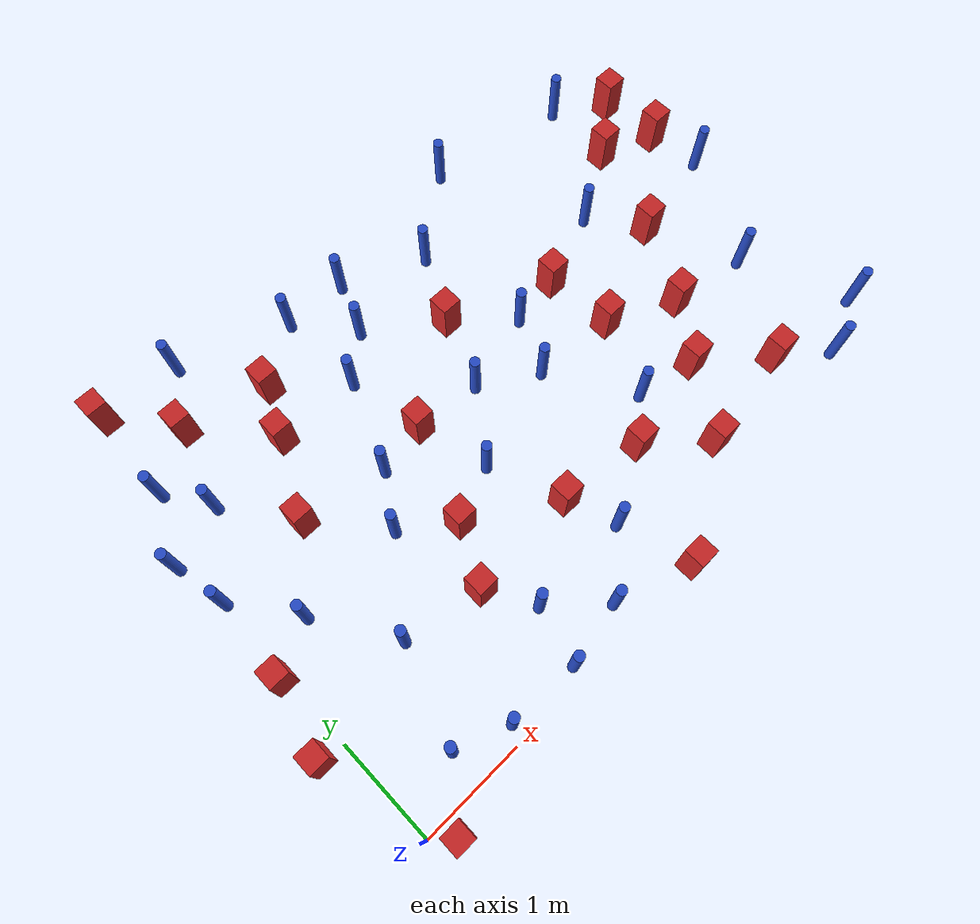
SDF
<sdf version="1.6">
 <model name="dense_9">
  <model name="square_post_obstacle2">
   <static>true</static>
   <pose>0.289632002403 4.67580909844 -6.11067671241e-07 -5.50515727128e-06 -8.79689657224e-07 2.37013304536e-05</pose>
   <link name="link">
    <pose>0 0 0.25 0 -0 0</pose>
    <inertial>
     <mass>100</mass>
     <inertia>
      <ixx>0.166667</ixx>
      <ixy>0</ixy>
      <ixz>0</ixz>
      <iyy>0.166667</iyy>
      <iyz>0</iyz>
      <izz>0.166667</izz>
     </inertia>
    </inertial>
    <collision name="collision"><geometry><box><size>.2 .2 .5</size></box></geometry></collision>
    <visual name="visual">
     <geometry><box><size>.2 .2 .5</size></box></geometry>
     <material>
      <script><name>Gazebo/Red</name><uri>file://media/materials/scripts/gazebo.material</uri></script>
     </material>
    </visual>
   </link>
  </model>
  <model name="pole_obstacle2">
   <static>true</static>
   <pose>3.53113890478 2.21635083177 -9.47619616065e-06 5.49618799737e-07 2.36310414051e-07 -1.55090534807e-07</pose>
   <link name="link">
    <pose>0 0 0.3 0 -0 0</pose>
    <inertial>
     <mass>1</mass>
     <inertia><ixx>0.145833</ixx><ixy>0</ixy><ixz>0</ixz><iyy>0.145833</iyy><iyz>0</iyz><izz>0.125</izz></inertia>
    </inertial>
    <collision name="collision">
     <geometry><cylinder><radius>0.05</radius><length>.6</length></cylinder></geometry>
    </collision>
    <visual name="visual">
     <geometry><cylinder><radius>0.05</radius><length>.6</length></cylinder></geometry>
     <material>
      <script><name>Gazebo/Blue</name><uri>file://media/materials/scripts/gazebo.material</uri></script>
     </material>
    </visual>
   </link>
  </model>
  <model name="square_post_obstacle5">
   <static>true</static>
   <pose>0.197511593898 -0.157477024642 -6.11067671241e-07 -5.50515727128e-06 -8.79689657224e-07 2.37013304536e-05</pose>
   <link name="link">
    <pose>0 0 0.25 0 -0 0</pose>
    <inertial>
     <mass>100</mass>
     <inertia>
      <ixx>0.166667</ixx>
      <ixy>0</ixy>
      <ixz>0</ixz>
      <iyy>0.166667</iyy>
      <iyz>0</iyz>
      <izz>0.166667</izz>
     </inertia>
    </inertial>
    <collision name="collision"><geometry><box><size>.2 .2 .5</size></box></geometry></collision>
    <visual name="visual">
     <geometry><box><size>.2 .2 .5</size></box></geometry>
     <material>
      <script><name>Gazebo/Red</name><uri>file://media/materials/scripts/gazebo.material</uri></script>
     </material>
    </visual>
   </link>
  </model>
  <model name="pole_obstacle8">
   <static>true</static>
   <pose>5.81048403324 4.28842071337 -9.47619616065e-06 5.49618799737e-07 2.36310414037e-07 -1.55090534814e-07</pose>
   <link name="link">
    <pose>0 0 0.3 0 -0 0</pose>
    <inertial>
     <mass>1</mass>
     <inertia><ixx>0.145833</ixx><ixy>0</ixy><ixz>0</ixz><iyy>0.145833</iyy><iyz>0</iyz><izz>0.125</izz></inertia>
    </inertial>
    <collision name="collision">
     <geometry><cylinder><radius>0.05</radius><length>.6</length></cylinder></geometry>
    </collision>
    <visual name="visual">
     <geometry><cylinder><radius>0.05</radius><length>.6</length></cylinder></geometry>
     <material>
      <script><name>Gazebo/Blue</name><uri>file://media/materials/scripts/gazebo.material</uri></script>
     </material>
    </visual>
   </link>
  </model>
  <model name="square_post_obstacle22">
   <static>true</static>
   <pose>1.5766084047 3.87303385566 -6.11067671241e-07 -5.50515727128e-06 -8.79689657224e-07 2.37013304536e-05</pose>
   <link name="link">
    <pose>0 0 0.25 0 -0 0</pose>
    <inertial>
     <mass>100</mass>
     <inertia>
      <ixx>0.166667</ixx>
      <ixy>0</ixy>
      <ixz>0</ixz>
      <iyy>0.166667</iyy>
      <iyz>0</iyz>
      <izz>0.166667</izz>
     </inertia>
    </inertial>
    <collision name="collision"><geometry><box><size>.2 .2 .5</size></box></geometry></collision>
    <visual name="visual">
     <geometry><box><size>.2 .2 .5</size></box></geometry>
     <material>
      <script><name>Gazebo/Red</name><uri>file://media/materials/scripts/gazebo.material</uri></script>
     </material>
    </visual>
   </link>
  </model>
  <model name="square_post_obstacle26">
   <static>true</static>
   <pose>1.67725255754 1.12566095785 -6.11067671241e-07 -5.50515727128e-06 -8.79689657224e-07 2.37013304536e-05</pose>
   <link name="link">
    <pose>0 0 0.25 0 -0 0</pose>
    <inertial>
     <mass>100</mass>
     <inertia>
      <ixx>0.166667</ixx>
      <ixy>0</ixy>
      <ixz>0</ixz>
      <iyy>0.166667</iyy>
      <iyz>0</iyz>
      <izz>0.166667</izz>
     </inertia>
    </inertial>
    <collision name="collision"><geometry><box><size>.2 .2 .5</size></box></geometry></collision>
    <visual name="visual">
     <geometry><box><size>.2 .2 .5</size></box></geometry>
     <material>
      <script><name>Gazebo/Red</name><uri>file://media/materials/scripts/gazebo.material</uri></script>
     </material>
    </visual>
   </link>
  </model>
  <model name="square_post_obstacle28">
   <static>true</static>
   <pose>5.21339870408 0.800874993577 -6.11067671241e-07 -5.50515727128e-06 -8.79689657224e-07 2.37013304536e-05</pose>
   <link name="link">
    <pose>0 0 0.25 0 -0 0</pose>
    <inertial>
     <mass>100</mass>
     <inertia>
      <ixx>0.166667</ixx>
      <ixy>0</ixy>
      <ixz>0</ixz>
      <iyy>0.166667</iyy>
      <iyz>0</iyz>
      <izz>0.166667</izz>
     </inertia>
    </inertial>
    <collision name="collision"><geometry><box><size>.2 .2 .5</size></box></geometry></collision>
    <visual name="visual">
     <geometry><box><size>.2 .2 .5</size></box></geometry>
     <material>
      <script><name>Gazebo/Red</name><uri>file://media/materials/scripts/gazebo.material</uri></script>
     </material>
    </visual>
   </link>
  </model>
  <model name="pole_obstacle19">
   <static>true</static>
   <pose>5.80837014451 1.71492182112 -9.47619616065e-06 5.49618799738e-07 2.36310414071e-07 -1.55090534796e-07</pose>
   <link name="link">
    <pose>0 0 0.3 0 -0 0</pose>
    <inertial>
     <mass>1</mass>
     <inertia><ixx>0.145833</ixx><ixy>0</ixy><ixz>0</ixz><iyy>0.145833</iyy><iyz>0</iyz><izz>0.125</izz></inertia>
    </inertial>
    <collision name="collision">
     <geometry><cylinder><radius>0.05</radius><length>.6</length></cylinder></geometry>
    </collision>
    <visual name="visual">
     <geometry><cylinder><radius>0.05</radius><length>.6</length></cylinder></geometry>
     <material>
      <script><name>Gazebo/Blue</name><uri>file://media/materials/scripts/gazebo.material</uri></script>
     </material>
    </visual>
   </link>
  </model>
  <model name="square_post_obstacle30">
   <static>true</static>
   <pose>2.31409844909 2.59847016423 -6.11067671241e-07 -5.50515727128e-06 -8.79689657224e-07 2.37013304536e-05</pose>
   <link name="link">
    <pose>0 0 0.25 0 -0 0</pose>
    <inertial>
     <mass>100</mass>
     <inertia>
      <ixx>0.166667</ixx>
      <ixy>0</ixy>
      <ixz>0</ixz>
      <iyy>0.166667</iyy>
      <iyz>0</iyz>
      <izz>0.166667</izz>
     </inertia>
    </inertial>
    <collision name="collision"><geometry><box><size>.2 .2 .5</size></box></geometry></collision>
    <visual name="visual">
     <geometry><box><size>.2 .2 .5</size></box></geometry>
     <material>
      <script><name>Gazebo/Red</name><uri>file://media/materials/scripts/gazebo.material</uri></script>
     </material>
    </visual>
   </link>
  </model>
  <model name="square_post_obstacle32">
   <static>true</static>
   <pose>4.34222511146 2.15220514527 -6.11067671241e-07 -5.50515727128e-06 -8.79689657224e-07 2.37013304536e-05</pose>
   <link name="link">
    <pose>0 0 0.25 0 -0 0</pose>
    <inertial>
     <mass>100</mass>
     <inertia>
      <ixx>0.166667</ixx>
      <ixy>0</ixy>
      <ixz>0</ixz>
      <iyy>0.166667</iyy>
      <iyz>0</iyz>
      <izz>0.166667</izz>
     </inertia>
    </inertial>
    <collision name="collision"><geometry><box><size>.2 .2 .5</size></box></geometry></collision>
    <visual name="visual">
     <geometry><box><size>.2 .2 .5</size></box></geometry>
     <material>
      <script><name>Gazebo/Red</name><uri>file://media/materials/scripts/gazebo.material</uri></script>
     </material>
    </visual>
   </link>
  </model>
  <model name="pole_obstacle33">
   <static>true</static>
   <pose>2.94641307945 0.705355554668 -9.47619616065e-06 5.49618799738e-07 2.36310414075e-07 -1.55090534793e-07</pose>
   <link name="link">
    <pose>0 0 0.3 0 -0 0</pose>
    <inertial>
     <mass>1</mass>
     <inertia><ixx>0.145833</ixx><ixy>0</ixy><ixz>0</ixz><iyy>0.145833</iyy><iyz>0</iyz><izz>0.125</izz></inertia>
    </inertial>
    <collision name="collision">
     <geometry><cylinder><radius>0.05</radius><length>.6</length></cylinder></geometry>
    </collision>
    <visual name="visual">
     <geometry><cylinder><radius>0.05</radius><length>.6</length></cylinder></geometry>
     <material>
      <script><name>Gazebo/Blue</name><uri>file://media/materials/scripts/gazebo.material</uri></script>
     </material>
    </visual>
   </link>
  </model>
  <model name="pole_obstacle38">
   <static>true</static>
   <pose>1.93459272871 0.675813867204 -9.47619616065e-06 5.49618799737e-07 2.36310414065e-07 -1.55090534798e-07</pose>
   <link name="link">
    <pose>0 0 0.3 0 -0 0</pose>
    <inertial>
     <mass>1</mass>
     <inertia><ixx>0.145833</ixx><ixy>0</ixy><ixz>0</ixz><iyy>0.145833</iyy><iyz>0</iyz><izz>0.125</izz></inertia>
    </inertial>
    <collision name="collision">
     <geometry><cylinder><radius>0.05</radius><length>.6</length></cylinder></geometry>
    </collision>
    <visual name="visual">
     <geometry><cylinder><radius>0.05</radius><length>.6</length></cylinder></geometry>
     <material>
      <script><name>Gazebo/Blue</name><uri>file://media/materials/scripts/gazebo.material</uri></script>
     </material>
    </visual>
   </link>
  </model>
  <model name="pole_obstacle42">
   <static>true</static>
   <pose>0.0202788030529 2.55956008532 -9.47619616065e-06 5.49618799737e-07 2.36310414066e-07 -1.55090534795e-07</pose>
   <link name="link">
    <pose>0 0 0.3 0 -0 0</pose>
    <inertial>
     <mass>1</mass>
     <inertia><ixx>0.145833</ixx><ixy>0</ixy><ixz>0</ixz><iyy>0.145833</iyy><iyz>0</iyz><izz>0.125</izz></inertia>
    </inertial>
    <collision name="collision">
     <geometry><cylinder><radius>0.05</radius><length>.6</length></cylinder></geometry>
    </collision>
    <visual name="visual">
     <geometry><cylinder><radius>0.05</radius><length>.6</length></cylinder></geometry>
     <material>
      <script><name>Gazebo/Blue</name><uri>file://media/materials/scripts/gazebo.material</uri></script>
     </material>
    </visual>
   </link>
  </model>
  <model name="square_post_obstacle42">
   <static>true</static>
   <pose>4.59890977952 1.30032857179 -6.11067671241e-07 -5.50515727128e-06 -8.79689657224e-07 2.37013304536e-05</pose>
   <link name="link">
    <pose>0 0 0.25 0 -0 0</pose>
    <inertial>
     <mass>100</mass>
     <inertia>
      <ixx>0.166667</ixx>
      <ixy>0</ixy>
      <ixz>0</ixz>
      <iyy>0.166667</iyy>
      <iyz>0</iyz>
      <izz>0.166667</izz>
     </inertia>
    </inertial>
    <collision name="collision"><geometry><box><size>.2 .2 .5</size></box></geometry></collision>
    <visual name="visual">
     <geometry><box><size>.2 .2 .5</size></box></geometry>
     <material>
      <script><name>Gazebo/Red</name><uri>file://media/materials/scripts/gazebo.material</uri></script>
     </material>
    </visual>
   </link>
  </model>
  <model name="pole_obstacle53">
   <static>true</static>
   <pose>1.4944517951 2.02455784514 -9.47619616065e-06 5.49618799737e-07 2.36310414052e-07 -1.55090534804e-07</pose>
   <link name="link">
    <pose>0 0 0.3 0 -0 0</pose>
    <inertial>
     <mass>1</mass>
     <inertia><ixx>0.145833</ixx><ixy>0</ixy><ixz>0</ixz><iyy>0.145833</iyy><iyz>0</iyz><izz>0.125</izz></inertia>
    </inertial>
    <collision name="collision">
     <geometry><cylinder><radius>0.05</radius><length>.6</length></cylinder></geometry>
    </collision>
    <visual name="visual">
     <geometry><cylinder><radius>0.05</radius><length>.6</length></cylinder></geometry>
     <material>
      <script><name>Gazebo/Blue</name><uri>file://media/materials/scripts/gazebo.material</uri></script>
     </material>
    </visual>
   </link>
  </model>
  <model name="square_post_obstacle57">
   <static>true</static>
   <pose>3.25659911849 3.23759663204 -6.11067671241e-07 -5.50515727128e-06 -8.79689657224e-07 2.37013304536e-05</pose>
   <link name="link">
    <pose>0 0 0.25 0 -0 0</pose>
    <inertial>
     <mass>100</mass>
     <inertia>
      <ixx>0.166667</ixx>
      <ixy>0</ixy>
      <ixz>0</ixz>
      <iyy>0.166667</iyy>
      <iyz>0</iyz>
      <izz>0.166667</izz>
     </inertia>
    </inertial>
    <collision name="collision"><geometry><box><size>.2 .2 .5</size></box></geometry></collision>
    <visual name="visual">
     <geometry><box><size>.2 .2 .5</size></box></geometry>
     <material>
      <script><name>Gazebo/Red</name><uri>file://media/materials/scripts/gazebo.material</uri></script>
     </material>
    </visual>
   </link>
  </model>
  <model name="pole_obstacle66">
   <static>true</static>
   <pose>1.80842460372 2.5107694685 -9.47619616065e-06 5.49618799737e-07 2.36310414062e-07 -1.55090534798e-07</pose>
   <link name="link">
    <pose>0 0 0.3 0 -0 0</pose>
    <inertial>
     <mass>1</mass>
     <inertia><ixx>0.145833</ixx><ixy>0</ixy><ixz>0</ixz><iyy>0.145833</iyy><iyz>0</iyz><izz>0.125</izz></inertia>
    </inertial>
    <collision name="collision">
     <geometry><cylinder><radius>0.05</radius><length>.6</length></cylinder></geometry>
    </collision>
    <visual name="visual">
     <geometry><cylinder><radius>0.05</radius><length>.6</length></cylinder></geometry>
     <material>
      <script><name>Gazebo/Blue</name><uri>file://media/materials/scripts/gazebo.material</uri></script>
     </material>
    </visual>
   </link>
  </model>
  <model name="pole_obstacle69">
   <static>true</static>
   <pose>5.67771473059 0.440851921993 -9.47619616065e-06 5.49618799737e-07 2.36310414057e-07 -1.55090534802e-07</pose>
   <link name="link">
    <pose>0 0 0.3 0 -0 0</pose>
    <inertial>
     <mass>1</mass>
     <inertia><ixx>0.145833</ixx><ixy>0</ixy><ixz>0</ixz><iyy>0.145833</iyy><iyz>0</iyz><izz>0.125</izz></inertia>
    </inertial>
    <collision name="collision">
     <geometry><cylinder><radius>0.05</radius><length>.6</length></cylinder></geometry>
    </collision>
    <visual name="visual">
     <geometry><cylinder><radius>0.05</radius><length>.6</length></cylinder></geometry>
     <material>
      <script><name>Gazebo/Blue</name><uri>file://media/materials/scripts/gazebo.material</uri></script>
     </material>
    </visual>
   </link>
  </model>
  <model name="pole_obstacle73">
   <static>true</static>
   <pose>3.59469836904 3.90290021158 -9.47619616065e-06 5.49618799737e-07 2.36310414051e-07 -1.55090534807e-07</pose>
   <link name="link">
    <pose>0 0 0.3 0 -0 0</pose>
    <inertial>
     <mass>1</mass>
     <inertia><ixx>0.145833</ixx><ixy>0</ixy><ixz>0</ixz><iyy>0.145833</iyy><iyz>0</iyz><izz>0.125</izz></inertia>
    </inertial>
    <collision name="collision">
     <geometry><cylinder><radius>0.05</radius><length>.6</length></cylinder></geometry>
    </collision>
    <visual name="visual">
     <geometry><cylinder><radius>0.05</radius><length>.6</length></cylinder></geometry>
     <material>
      <script><name>Gazebo/Blue</name><uri>file://media/materials/scripts/gazebo.material</uri></script>
     </material>
    </visual>
   </link>
  </model>
  <model name="pole_obstacle74">
   <static>true</static>
   <pose>-0.0822452410296 3.08621470215 -9.47619616065e-06 5.49618799737e-07 2.36310414067e-07 -1.55090534797e-07</pose>
   <link name="link">
    <pose>0 0 0.3 0 -0 0</pose>
    <inertial>
     <mass>1</mass>
     <inertia><ixx>0.145833</ixx><ixy>0</ixy><ixz>0</ixz><iyy>0.145833</iyy><iyz>0</iyz><izz>0.125</izz></inertia>
    </inertial>
    <collision name="collision">
     <geometry><cylinder><radius>0.05</radius><length>.6</length></cylinder></geometry>
    </collision>
    <visual name="visual">
     <geometry><cylinder><radius>0.05</radius><length>.6</length></cylinder></geometry>
     <material>
      <script><name>Gazebo/Blue</name><uri>file://media/materials/scripts/gazebo.material</uri></script>
     </material>
    </visual>
   </link>
  </model>
  <model name="square_post_obstacle78">
   <static>true</static>
   <pose>4.1668135629 0.625565197173 -6.11067671241e-07 -5.50515727128e-06 -8.79689657224e-07 2.37013304536e-05</pose>
   <link name="link">
    <pose>0 0 0.25 0 -0 0</pose>
    <inertial>
     <mass>100</mass>
     <inertia>
      <ixx>0.166667</ixx>
      <ixy>0</ixy>
      <ixz>0</ixz>
      <iyy>0.166667</iyy>
      <iyz>0</iyz>
      <izz>0.166667</izz>
     </inertia>
    </inertial>
    <collision name="collision"><geometry><box><size>.2 .2 .5</size></box></geometry></collision>
    <visual name="visual">
     <geometry><box><size>.2 .2 .5</size></box></geometry>
     <material>
      <script><name>Gazebo/Red</name><uri>file://media/materials/scripts/gazebo.material</uri></script>
     </material>
    </visual>
   </link>
  </model>
  <model name="pole_obstacle84">
   <static>true</static>
   <pose>6.24963681479 0.678285950661 -9.47619616065e-06 5.49618799737e-07 2.36310414061e-07 -1.550905348e-07</pose>
   <link name="link">
    <pose>0 0 0.3 0 -0 0</pose>
    <inertial>
     <mass>1</mass>
     <inertia><ixx>0.145833</ixx><ixy>0</ixy><ixz>0</ixz><iyy>0.145833</iyy><iyz>0</iyz><izz>0.125</izz></inertia>
    </inertial>
    <collision name="collision">
     <geometry><cylinder><radius>0.05</radius><length>.6</length></cylinder></geometry>
    </collision>
    <visual name="visual">
     <geometry><cylinder><radius>0.05</radius><length>.6</length></cylinder></geometry>
     <material>
      <script><name>Gazebo/Blue</name><uri>file://media/materials/scripts/gazebo.material</uri></script>
     </material>
    </visual>
   </link>
  </model>
  <model name="pole_obstacle94">
   <static>true</static>
   <pose>2.49915419956 1.90323190239 -9.47619616065e-06 5.49618799737e-07 2.36310414072e-07 -1.55090534793e-07</pose>
   <link name="link">
    <pose>0 0 0.3 0 -0 0</pose>
    <inertial>
     <mass>1</mass>
     <inertia><ixx>0.145833</ixx><ixy>0</ixy><ixz>0</ixz><iyy>0.145833</iyy><iyz>0</iyz><izz>0.125</izz></inertia>
    </inertial>
    <collision name="collision">
     <geometry><cylinder><radius>0.05</radius><length>.6</length></cylinder></geometry>
    </collision>
    <visual name="visual">
     <geometry><cylinder><radius>0.05</radius><length>.6</length></cylinder></geometry>
     <material>
      <script><name>Gazebo/Blue</name><uri>file://media/materials/scripts/gazebo.material</uri></script>
     </material>
    </visual>
   </link>
  </model>
  <model name="square_post_obstacle84">
   <static>true</static>
   <pose>0.752339263811 4.07348924522 -6.11067671241e-07 -5.50515727128e-06 -8.79689657224e-07 2.37013304536e-05</pose>
   <link name="link">
    <pose>0 0 0.25 0 -0 0</pose>
    <inertial>
     <mass>100</mass>
     <inertia>
      <ixx>0.166667</ixx>
      <ixy>0</ixy>
      <ixz>0</ixz>
      <iyy>0.166667</iyy>
      <iyz>0</iyz>
      <izz>0.166667</izz>
     </inertia>
    </inertial>
    <collision name="collision"><geometry><box><size>.2 .2 .5</size></box></geometry></collision>
    <visual name="visual">
     <geometry><box><size>.2 .2 .5</size></box></geometry>
     <material>
      <script><name>Gazebo/Red</name><uri>file://media/materials/scripts/gazebo.material</uri></script>
     </material>
    </visual>
   </link>
  </model>
  <model name="pole_obstacle100">
   <static>true</static>
   <pose>3.77919426747 2.76175371669 -9.47619616065e-06 5.49618799737e-07 2.36310414051e-07 -1.55090534807e-07</pose>
   <link name="link">
    <pose>0 0 0.3 0 -0 0</pose>
    <inertial>
     <mass>1</mass>
     <inertia><ixx>0.145833</ixx><ixy>0</ixy><ixz>0</ixz><iyy>0.145833</iyy><iyz>0</iyz><izz>0.125</izz></inertia>
    </inertial>
    <collision name="collision">
     <geometry><cylinder><radius>0.05</radius><length>.6</length></cylinder></geometry>
    </collision>
    <visual name="visual">
     <geometry><cylinder><radius>0.05</radius><length>.6</length></cylinder></geometry>
     <material>
      <script><name>Gazebo/Blue</name><uri>file://media/materials/scripts/gazebo.material</uri></script>
     </material>
    </visual>
   </link>
  </model>
  <model name="pole_obstacle105">
   <static>true</static>
   <pose>1.07703947547 4.63694346206 -9.47619616065e-06 5.49618799737e-07 2.36310414061e-07 -1.550905348e-07</pose>
   <link name="link">
    <pose>0 0 0.3 0 -0 0</pose>
    <inertial>
     <mass>1</mass>
     <inertia><ixx>0.145833</ixx><ixy>0</ixy><ixz>0</ixz><iyy>0.145833</iyy><iyz>0</iyz><izz>0.125</izz></inertia>
    </inertial>
    <collision name="collision">
     <geometry><cylinder><radius>0.05</radius><length>.6</length></cylinder></geometry>
    </collision>
    <visual name="visual">
     <geometry><cylinder><radius>0.05</radius><length>.6</length></cylinder></geometry>
     <material>
      <script><name>Gazebo/Blue</name><uri>file://media/materials/scripts/gazebo.material</uri></script>
     </material>
    </visual>
   </link>
  </model>
  <model name="pole_obstacle111">
   <static>true</static>
   <pose>2.17376053232 3.366848373 -9.47619616065e-06 5.49618799737e-07 2.36310414051e-07 -1.55090534807e-07</pose>
   <link name="link">
    <pose>0 0 0.3 0 -0 0</pose>
    <inertial>
     <mass>1</mass>
     <inertia><ixx>0.145833</ixx><ixy>0</ixy><ixz>0</ixz><iyy>0.145833</iyy><iyz>0</iyz><izz>0.125</izz></inertia>
    </inertial>
    <collision name="collision">
     <geometry><cylinder><radius>0.05</radius><length>.6</length></cylinder></geometry>
    </collision>
    <visual name="visual">
     <geometry><cylinder><radius>0.05</radius><length>.6</length></cylinder></geometry>
     <material>
      <script><name>Gazebo/Blue</name><uri>file://media/materials/scripts/gazebo.material</uri></script>
     </material>
    </visual>
   </link>
  </model>
  <model name="pole_obstacle117">
   <static>true</static>
   <pose>4.3845559083 4.53126486842 -9.47619616065e-06 5.49618799737e-07 2.36310414037e-07 -1.55090534814e-07</pose>
   <link name="link">
    <pose>0 0 0.3 0 -0 0</pose>
    <inertial>
     <mass>1</mass>
     <inertia><ixx>0.145833</ixx><ixy>0</ixy><ixz>0</ixz><iyy>0.145833</iyy><iyz>0</iyz><izz>0.125</izz></inertia>
    </inertial>
    <collision name="collision">
     <geometry><cylinder><radius>0.05</radius><length>.6</length></cylinder></geometry>
    </collision>
    <visual name="visual">
     <geometry><cylinder><radius>0.05</radius><length>.6</length></cylinder></geometry>
     <material>
      <script><name>Gazebo/Blue</name><uri>file://media/materials/scripts/gazebo.material</uri></script>
     </material>
    </visual>
   </link>
  </model>
  <model name="square_post_obstacle105">
   <static>true</static>
   <pose>-0.217767395943 1.03752463609 -6.11067671241e-07 -5.50515727128e-06 -8.79689657224e-07 2.37013304536e-05</pose>
   <link name="link">
    <pose>0 0 0.25 0 -0 0</pose>
    <inertial>
     <mass>100</mass>
     <inertia>
      <ixx>0.166667</ixx>
      <ixy>0</ixy>
      <ixz>0</ixz>
      <iyy>0.166667</iyy>
      <iyz>0</iyz>
      <izz>0.166667</izz>
     </inertia>
    </inertial>
    <collision name="collision"><geometry><box><size>.2 .2 .5</size></box></geometry></collision>
    <visual name="visual">
     <geometry><box><size>.2 .2 .5</size></box></geometry>
     <material>
      <script><name>Gazebo/Red</name><uri>file://media/materials/scripts/gazebo.material</uri></script>
     </material>
    </visual>
   </link>
  </model>
  <model name="square_post_obstacle109">
   <static>true</static>
   <pose>5.412288739 2.6043102466 -6.11067671241e-07 -5.50515727128e-06 -8.79689657224e-07 2.37013304536e-05</pose>
   <link name="link">
    <pose>0 0 0.25 0 -0 0</pose>
    <inertial>
     <mass>100</mass>
     <inertia>
      <ixx>0.166667</ixx>
      <ixy>0</ixy>
      <ixz>0</ixz>
      <iyy>0.166667</iyy>
      <iyz>0</iyz>
      <izz>0.166667</izz>
     </inertia>
    </inertial>
    <collision name="collision"><geometry><box><size>.2 .2 .5</size></box></geometry></collision>
    <visual name="visual">
     <geometry><box><size>.2 .2 .5</size></box></geometry>
     <material>
      <script><name>Gazebo/Red</name><uri>file://media/materials/scripts/gazebo.material</uri></script>
     </material>
    </visual>
   </link>
  </model>
  <model name="square_post_obstacle110">
   <static>true</static>
   <pose>2.77015485849 1.1883107417 -6.11067671241e-07 -5.50515727128e-06 -8.79689657224e-07 2.37013304536e-05</pose>
   <link name="link">
    <pose>0 0 0.25 0 -0 0</pose>
    <inertial>
     <mass>100</mass>
     <inertia>
      <ixx>0.166667</ixx>
      <ixy>0</ixy>
      <ixz>0</ixz>
      <iyy>0.166667</iyy>
      <iyz>0</iyz>
      <izz>0.166667</izz>
     </inertia>
    </inertial>
    <collision name="collision"><geometry><box><size>.2 .2 .5</size></box></geometry></collision>
    <visual name="visual">
     <geometry><box><size>.2 .2 .5</size></box></geometry>
     <material>
      <script><name>Gazebo/Red</name><uri>file://media/materials/scripts/gazebo.material</uri></script>
     </material>
    </visual>
   </link>
  </model>
  <model name="square_post_obstacle111">
   <static>true</static>
   <pose>3.15787792161 0.0123868509678 -6.11067671241e-07 -5.50515727128e-06 -8.79689657224e-07 2.37013304536e-05</pose>
   <link name="link">
    <pose>0 0 0.25 0 -0 0</pose>
    <inertial>
     <mass>100</mass>
     <inertia>
      <ixx>0.166667</ixx>
      <ixy>0</ixy>
      <ixz>0</ixz>
      <iyy>0.166667</iyy>
      <iyz>0</iyz>
      <izz>0.166667</izz>
     </inertia>
    </inertial>
    <collision name="collision"><geometry><box><size>.2 .2 .5</size></box></geometry></collision>
    <visual name="visual">
     <geometry><box><size>.2 .2 .5</size></box></geometry>
     <material>
      <script><name>Gazebo/Red</name><uri>file://media/materials/scripts/gazebo.material</uri></script>
     </material>
    </visual>
   </link>
  </model>
  <model name="pole_obstacle122">
   <static>true</static>
   <pose>2.41157694829 0.247655431442 -9.47619616065e-06 5.49618799737e-07 2.36310414072e-07 -1.55090534794e-07</pose>
   <link name="link">
    <pose>0 0 0.3 0 -0 0</pose>
    <inertial>
     <mass>1</mass>
     <inertia><ixx>0.145833</ixx><ixy>0</ixy><ixz>0</ixz><iyy>0.145833</iyy><iyz>0</iyz><izz>0.125</izz></inertia>
    </inertial>
    <collision name="collision">
     <geometry><cylinder><radius>0.05</radius><length>.6</length></cylinder></geometry>
    </collision>
    <visual name="visual">
     <geometry><cylinder><radius>0.05</radius><length>.6</length></cylinder></geometry>
     <material>
      <script><name>Gazebo/Blue</name><uri>file://media/materials/scripts/gazebo.material</uri></script>
     </material>
    </visual>
   </link>
  </model>
  <model name="pole_obstacle124">
   <static>true</static>
   <pose>6.40589945329 2.80545967652 -9.47619616065e-06 5.49618799738e-07 2.36310414051e-07 -1.55090534805e-07</pose>
   <link name="link">
    <pose>0 0 0.3 0 -0 0</pose>
    <inertial>
     <mass>1</mass>
     <inertia><ixx>0.145833</ixx><ixy>0</ixy><ixz>0</ixz><iyy>0.145833</iyy><iyz>0</iyz><izz>0.125</izz></inertia>
    </inertial>
    <collision name="collision">
     <geometry><cylinder><radius>0.05</radius><length>.6</length></cylinder></geometry>
    </collision>
    <visual name="visual">
     <geometry><cylinder><radius>0.05</radius><length>.6</length></cylinder></geometry>
     <material>
      <script><name>Gazebo/Blue</name><uri>file://media/materials/scripts/gazebo.material</uri></script>
     </material>
    </visual>
   </link>
  </model>
  <model name="pole_obstacle127">
   <static>true</static>
   <pose>4.0266687982 1.41125415819 -9.4761961606e-06 5.49618799729e-07 2.36310414004e-07 -1.55090534822e-07</pose>
   <link name="link">
    <pose>0 0 0.3 0 -0 0</pose>
    <inertial>
     <mass>1</mass>
     <inertia><ixx>0.145833</ixx><ixy>0</ixy><ixz>0</ixz><iyy>0.145833</iyy><iyz>0</iyz><izz>0.125</izz></inertia>
    </inertial>
    <collision name="collision">
     <geometry><cylinder><radius>0.05</radius><length>.6</length></cylinder></geometry>
    </collision>
    <visual name="visual">
     <geometry><cylinder><radius>0.05</radius><length>.6</length></cylinder></geometry>
     <material>
      <script><name>Gazebo/Blue</name><uri>file://media/materials/scripts/gazebo.material</uri></script>
     </material>
    </visual>
   </link>
  </model>
  <model name="pole_obstacle129">
   <static>true</static>
   <pose>0.497629618551 3.29525581711 -9.47619616065e-06 5.49618799738e-07 2.36310414066e-07 -1.55090534797e-07</pose>
   <link name="link">
    <pose>0 0 0.3 0 -0 0</pose>
    <inertial>
     <mass>1</mass>
     <inertia><ixx>0.145833</ixx><ixy>0</ixy><ixz>0</ixz><iyy>0.145833</iyy><iyz>0</iyz><izz>0.125</izz></inertia>
    </inertial>
    <collision name="collision">
     <geometry><cylinder><radius>0.05</radius><length>.6</length></cylinder></geometry>
    </collision>
    <visual name="visual">
     <geometry><cylinder><radius>0.05</radius><length>.6</length></cylinder></geometry>
     <material>
      <script><name>Gazebo/Blue</name><uri>file://media/materials/scripts/gazebo.material</uri></script>
     </material>
    </visual>
   </link>
  </model>
  <model name="square_post_obstacle114">
   <static>true</static>
   <pose>1.96006026497 1.68017085778 -6.11067671241e-07 -5.50515727128e-06 -8.79689657224e-07 2.37013304536e-05</pose>
   <link name="link">
    <pose>0 0 0.25 0 -0 0</pose>
    <inertial>
     <mass>100</mass>
     <inertia>
      <ixx>0.166667</ixx>
      <ixy>0</ixy>
      <ixz>0</ixz>
      <iyy>0.166667</iyy>
      <iyz>0</iyz>
      <izz>0.166667</izz>
     </inertia>
    </inertial>
    <collision name="collision"><geometry><box><size>.2 .2 .5</size></box></geometry></collision>
    <visual name="visual">
     <geometry><box><size>.2 .2 .5</size></box></geometry>
     <material>
      <script><name>Gazebo/Red</name><uri>file://media/materials/scripts/gazebo.material</uri></script>
     </material>
    </visual>
   </link>
  </model>
  <model name="square_post_obstacle116">
   <static>true</static>
   <pose>6.3126535288 3.34329859397 -6.11067671241e-07 -5.50515727128e-06 -8.79689657224e-07 2.37013304536e-05</pose>
   <link name="link">
    <pose>0 0 0.25 0 -0 0</pose>
    <inertial>
     <mass>100</mass>
     <inertia>
      <ixx>0.166667</ixx>
      <ixy>0</ixy>
      <ixz>0</ixz>
      <iyy>0.166667</iyy>
      <iyz>0</iyz>
      <izz>0.166667</izz>
     </inertia>
    </inertial>
    <collision name="collision"><geometry><box><size>.2 .2 .5</size></box></geometry></collision>
    <visual name="visual">
     <geometry><box><size>.2 .2 .5</size></box></geometry>
     <material>
      <script><name>Gazebo/Red</name><uri>file://media/materials/scripts/gazebo.material</uri></script>
     </material>
    </visual>
   </link>
  </model>
  <model name="square_post_obstacle126">
   <static>true</static>
   <pose>5.00595006204 1.84082103899 -6.11067671241e-07 -5.50515727128e-06 -8.79689657224e-07 2.37013304536e-05</pose>
   <link name="link">
    <pose>0 0 0.25 0 -0 0</pose>
    <inertial>
     <mass>100</mass>
     <inertia>
      <ixx>0.166667</ixx>
      <ixy>0</ixy>
      <ixz>0</ixz>
      <iyy>0.166667</iyy>
      <iyz>0</iyz>
      <izz>0.166667</izz>
     </inertia>
    </inertial>
    <collision name="collision"><geometry><box><size>.2 .2 .5</size></box></geometry></collision>
    <visual name="visual">
     <geometry><box><size>.2 .2 .5</size></box></geometry>
     <material>
      <script><name>Gazebo/Red</name><uri>file://media/materials/scripts/gazebo.material</uri></script>
     </material>
    </visual>
   </link>
  </model>
  <model name="square_post_obstacle134">
   <static>true</static>
   <pose>0.971050024841 2.65492418503 -6.11067671241e-07 -5.50515727128e-06 -8.79689657224e-07 2.37013304536e-05</pose>
   <link name="link">
    <pose>0 0 0.25 0 -0 0</pose>
    <inertial>
     <mass>100</mass>
     <inertia>
      <ixx>0.166667</ixx>
      <ixy>0</ixy>
      <ixz>0</ixz>
      <iyy>0.166667</iyy>
      <iyz>0</iyz>
      <izz>0.166667</izz>
     </inertia>
    </inertial>
    <collision name="collision"><geometry><box><size>.2 .2 .5</size></box></geometry></collision>
    <visual name="visual">
     <geometry><box><size>.2 .2 .5</size></box></geometry>
     <material>
      <script><name>Gazebo/Red</name><uri>file://media/materials/scripts/gazebo.material</uri></script>
     </material>
    </visual>
   </link>
  </model>
  <model name="pole_obstacle158">
   <static>true</static>
   <pose>0.217707957268 3.73100058126 -9.4761961606e-06 5.49618799729e-07 2.36310413995e-07 -1.55090534826e-07</pose>
   <link name="link">
    <pose>0 0 0.3 0 -0 0</pose>
    <inertial>
     <mass>1</mass>
     <inertia><ixx>0.145833</ixx><ixy>0</ixy><ixz>0</ixz><iyy>0.145833</iyy><iyz>0</iyz><izz>0.125</izz></inertia>
    </inertial>
    <collision name="collision">
     <geometry><cylinder><radius>0.05</radius><length>.6</length></cylinder></geometry>
    </collision>
    <visual name="visual">
     <geometry><cylinder><radius>0.05</radius><length>.6</length></cylinder></geometry>
     <material>
      <script><name>Gazebo/Blue</name><uri>file://media/materials/scripts/gazebo.material</uri></script>
     </material>
    </visual>
   </link>
  </model>
  <model name="pole_obstacle162">
   <static>true</static>
   <pose>2.57808146272 3.72949033106 -9.47619616065e-06 5.49618799737e-07 2.36310414051e-07 -1.55090534807e-07</pose>
   <link name="link">
    <pose>0 0 0.3 0 -0 0</pose>
    <inertial>
     <mass>1</mass>
     <inertia><ixx>0.145833</ixx><ixy>0</ixy><ixz>0</ixz><iyy>0.145833</iyy><iyz>0</iyz><izz>0.125</izz></inertia>
    </inertial>
    <collision name="collision">
     <geometry><cylinder><radius>0.05</radius><length>.6</length></cylinder></geometry>
    </collision>
    <visual name="visual">
     <geometry><cylinder><radius>0.05</radius><length>.6</length></cylinder></geometry>
     <material>
      <script><name>Gazebo/Blue</name><uri>file://media/materials/scripts/gazebo.material</uri></script>
     </material>
    </visual>
   </link>
  </model>
  <model name="pole_obstacle163">
   <static>true</static>
   <pose>1.09335480055 0.155629746672 -9.47619616065e-06 5.49618799737e-07 2.36310414069e-07 -1.55090534794e-07</pose>
   <link name="link">
    <pose>0 0 0.3 0 -0 0</pose>
    <inertial>
     <mass>1</mass>
     <inertia><ixx>0.145833</ixx><ixy>0</ixy><ixz>0</ixz><iyy>0.145833</iyy><iyz>0</iyz><izz>0.125</izz></inertia>
    </inertial>
    <collision name="collision">
     <geometry><cylinder><radius>0.05</radius><length>.6</length></cylinder></geometry>
    </collision>
    <visual name="visual">
     <geometry><cylinder><radius>0.05</radius><length>.6</length></cylinder></geometry>
     <material>
      <script><name>Gazebo/Blue</name><uri>file://media/materials/scripts/gazebo.material</uri></script>
     </material>
    </visual>
   </link>
  </model>
  <model name="pole_obstacle170">
   <static>true</static>
   <pose>2.98052570681 2.54842222427 -9.47619616065e-06 5.49618799737e-07 2.36310414051e-07 -1.55090534807e-07</pose>
   <link name="link">
    <pose>0 0 0.3 0 -0 0</pose>
    <inertial>
     <mass>1</mass>
     <inertia><ixx>0.145833</ixx><ixy>0</ixy><ixz>0</ixz><iyy>0.145833</iyy><iyz>0</iyz><izz>0.125</izz></inertia>
    </inertial>
    <collision name="collision">
     <geometry><cylinder><radius>0.05</radius><length>.6</length></cylinder></geometry>
    </collision>
    <visual name="visual">
     <geometry><cylinder><radius>0.05</radius><length>.6</length></cylinder></geometry>
     <material>
      <script><name>Gazebo/Blue</name><uri>file://media/materials/scripts/gazebo.material</uri></script>
     </material>
    </visual>
   </link>
  </model>
  <model name="pole_obstacle172">
   <static>true</static>
   <pose>0.594745508104 0.341962839553 -9.47619616065e-06 5.49618799737e-07 2.36310414068e-07 -1.55090534796e-07</pose>
   <link name="link">
    <pose>0 0 0.3 0 -0 0</pose>
    <inertial>
     <mass>1</mass>
     <inertia><ixx>0.145833</ixx><ixy>0</ixy><ixz>0</ixz><iyy>0.145833</iyy><iyz>0</iyz><izz>0.125</izz></inertia>
    </inertial>
    <collision name="collision">
     <geometry><cylinder><radius>0.05</radius><length>.6</length></cylinder></geometry>
    </collision>
    <visual name="visual">
     <geometry><cylinder><radius>0.05</radius><length>.6</length></cylinder></geometry>
     <material>
      <script><name>Gazebo/Blue</name><uri>file://media/materials/scripts/gazebo.material</uri></script>
     </material>
    </visual>
   </link>
  </model>
  <model name="square_post_obstacle166">
   <static>true</static>
   <pose>3.62420302376 1.09055989901 -6.11067671241e-07 -5.50515727128e-06 -8.79689657224e-07 2.37013304536e-05</pose>
   <link name="link">
    <pose>0 0 0.25 0 -0 0</pose>
    <inertial>
     <mass>100</mass>
     <inertia>
      <ixx>0.166667</ixx>
      <ixy>0</ixy>
      <ixz>0</ixz>
      <iyy>0.166667</iyy>
      <iyz>0</iyz>
      <izz>0.166667</izz>
     </inertia>
    </inertial>
    <collision name="collision"><geometry><box><size>.2 .2 .5</size></box></geometry></collision>
    <visual name="visual">
     <geometry><box><size>.2 .2 .5</size></box></geometry>
     <material>
      <script><name>Gazebo/Red</name><uri>file://media/materials/scripts/gazebo.material</uri></script>
     </material>
    </visual>
   </link>
  </model>
  <model name="pole_obstacle178">
   <static>true</static>
   <pose>1.78956417819 0.126932979091 -9.47619616065e-06 5.49618799737e-07 2.36310414069e-07 -1.55090534794e-07</pose>
   <link name="link">
    <pose>0 0 0.3 0 -0 0</pose>
    <inertial>
     <mass>1</mass>
     <inertia><ixx>0.145833</ixx><ixy>0</ixy><ixz>0</ixz><iyy>0.145833</iyy><iyz>0</iyz><izz>0.125</izz></inertia>
    </inertial>
    <collision name="collision">
     <geometry><cylinder><radius>0.05</radius><length>.6</length></cylinder></geometry>
    </collision>
    <visual name="visual">
     <geometry><cylinder><radius>0.05</radius><length>.6</length></cylinder></geometry>
     <material>
      <script><name>Gazebo/Blue</name><uri>file://media/materials/scripts/gazebo.material</uri></script>
     </material>
    </visual>
   </link>
  </model>
  <model name="pole_obstacle183">
   <static>true</static>
   <pose>2.78158310172 4.24239045129 -9.47619616065e-06 5.49618799738e-07 2.3631041406e-07 -1.55090534801e-07</pose>
   <link name="link">
    <pose>0 0 0.3 0 -0 0</pose>
    <inertial>
     <mass>1</mass>
     <inertia><ixx>0.145833</ixx><ixy>0</ixy><ixz>0</ixz><iyy>0.145833</iyy><iyz>0</iyz><izz>0.125</izz></inertia>
    </inertial>
    <collision name="collision">
     <geometry><cylinder><radius>0.05</radius><length>.6</length></cylinder></geometry>
    </collision>
    <visual name="visual">
     <geometry><cylinder><radius>0.05</radius><length>.6</length></cylinder></geometry>
     <material>
      <script><name>Gazebo/Blue</name><uri>file://media/materials/scripts/gazebo.material</uri></script>
     </material>
    </visual>
   </link>
  </model>
  <model name="square_post_obstacle174">
   <static>true</static>
   <pose>4.28757438432 2.83598342101 -6.11067671241e-07 -5.50515727128e-06 -8.79689657224e-07 2.37013304536e-05</pose>
   <link name="link">
    <pose>0 0 0.25 0 -0 0</pose>
    <inertial>
     <mass>100</mass>
     <inertia>
      <ixx>0.166667</ixx>
      <ixy>0</ixy>
      <ixz>0</ixz>
      <iyy>0.166667</iyy>
      <iyz>0</iyz>
      <izz>0.166667</izz>
     </inertia>
    </inertial>
    <collision name="collision"><geometry><box><size>.2 .2 .5</size></box></geometry></collision>
    <visual name="visual">
     <geometry><box><size>.2 .2 .5</size></box></geometry>
     <material>
      <script><name>Gazebo/Red</name><uri>file://media/materials/scripts/gazebo.material</uri></script>
     </material>
    </visual>
   </link>
  </model>
  <model name="square_post_obstacle187">
   <static>true</static>
   <pose>6.28089710742 3.95743381405 -6.11067671241e-07 -5.50515727128e-06 -8.79689657224e-07 2.37013304536e-05</pose>
   <link name="link">
    <pose>0 0 0.25 0 -0 0</pose>
    <inertial>
     <mass>100</mass>
     <inertia>
      <ixx>0.166667</ixx>
      <ixy>0</ixy>
      <ixz>0</ixz>
      <iyy>0.166667</iyy>
      <iyz>0</iyz>
      <izz>0.166667</izz>
     </inertia>
    </inertial>
    <collision name="collision"><geometry><box><size>.2 .2 .5</size></box></geometry></collision>
    <visual name="visual">
     <geometry><box><size>.2 .2 .5</size></box></geometry>
     <material>
      <script><name>Gazebo/Red</name><uri>file://media/materials/scripts/gazebo.material</uri></script>
     </material>
    </visual>
   </link>
  </model>
  <model name="pole_obstacle202">
   <static>true</static>
   <pose>5.07016011007 3.12417260836 -9.47619616065e-06 5.49618799738e-07 2.36310414051e-07 -1.55090534805e-07</pose>
   <link name="link">
    <pose>0 0 0.3 0 -0 0</pose>
    <inertial>
     <mass>1</mass>
     <inertia><ixx>0.145833</ixx><ixy>0</ixy><ixz>0</ixz><iyy>0.145833</iyy><iyz>0</iyz><izz>0.125</izz></inertia>
    </inertial>
    <collision name="collision">
     <geometry><cylinder><radius>0.05</radius><length>.6</length></cylinder></geometry>
    </collision>
    <visual name="visual">
     <geometry><cylinder><radius>0.05</radius><length>.6</length></cylinder></geometry>
     <material>
      <script><name>Gazebo/Blue</name><uri>file://media/materials/scripts/gazebo.material</uri></script>
     </material>
    </visual>
   </link>
  </model>
  <model name="pole_obstacle214">
   <static>true</static>
   <pose>2.14942849264 4.26308721409 -9.47619616065e-06 5.49618799738e-07 2.3631041406e-07 -1.55090534801e-07</pose>
   <link name="link">
    <pose>0 0 0.3 0 -0 0</pose>
    <inertial>
     <mass>1</mass>
     <inertia><ixx>0.145833</ixx><ixy>0</ixy><ixz>0</ixz><iyy>0.145833</iyy><iyz>0</iyz><izz>0.125</izz></inertia>
    </inertial>
    <collision name="collision">
     <geometry><cylinder><radius>0.05</radius><length>.6</length></cylinder></geometry>
    </collision>
    <visual name="visual">
     <geometry><cylinder><radius>0.05</radius><length>.6</length></cylinder></geometry>
     <material>
      <script><name>Gazebo/Blue</name><uri>file://media/materials/scripts/gazebo.material</uri></script>
     </material>
    </visual>
   </link>
  </model>
  <model name="pole_obstacle218">
   <static>true</static>
   <pose>0.910577641097 1.25502841493 -9.47619616065e-06 5.49618799738e-07 2.36310414061e-07 -1.55090534801e-07</pose>
   <link name="link">
    <pose>0 0 0.3 0 -0 0</pose>
    <inertial>
     <mass>1</mass>
     <inertia><ixx>0.145833</ixx><ixy>0</ixy><ixz>0</ixz><iyy>0.145833</iyy><iyz>0</iyz><izz>0.125</izz></inertia>
    </inertial>
    <collision name="collision">
     <geometry><cylinder><radius>0.05</radius><length>.6</length></cylinder></geometry>
    </collision>
    <visual name="visual">
     <geometry><cylinder><radius>0.05</radius><length>.6</length></cylinder></geometry>
     <material>
      <script><name>Gazebo/Blue</name><uri>file://media/materials/scripts/gazebo.material</uri></script>
     </material>
    </visual>
   </link>
  </model>
  <model name="pole_obstacle225">
   <static>true</static>
   <pose>0.447992725939 1.98540669343 -9.47619616065e-06 5.49618799737e-07 2.36310414059e-07 -1.550905348e-07</pose>
   <link name="link">
    <pose>0 0 0.3 0 -0 0</pose>
    <inertial>
     <mass>1</mass>
     <inertia><ixx>0.145833</ixx><ixy>0</ixy><ixz>0</ixz><iyy>0.145833</iyy><iyz>0</iyz><izz>0.125</izz></inertia>
    </inertial>
    <collision name="collision">
     <geometry><cylinder><radius>0.05</radius><length>.6</length></cylinder></geometry>
    </collision>
    <visual name="visual">
     <geometry><cylinder><radius>0.05</radius><length>.6</length></cylinder></geometry>
     <material>
      <script><name>Gazebo/Blue</name><uri>file://media/materials/scripts/gazebo.material</uri></script>
     </material>
    </visual>
   </link>
  </model>
  <model name="square_post_obstacle199">
   <static>true</static>
   <pose>-0.0336890497969 1.74157997688 -6.11067671241e-07 -5.50515727128e-06 -8.79689657224e-07 2.37013304536e-05</pose>
   <link name="link">
    <pose>0 0 0.25 0 -0 0</pose>
    <inertial>
     <mass>100</mass>
     <inertia>
      <ixx>0.166667</ixx>
      <ixy>0</ixy>
      <ixz>0</ixz>
      <iyy>0.166667</iyy>
      <iyz>0</iyz>
      <izz>0.166667</izz>
     </inertia>
    </inertial>
    <collision name="collision"><geometry><box><size>.2 .2 .5</size></box></geometry></collision>
    <visual name="visual">
     <geometry><box><size>.2 .2 .5</size></box></geometry>
     <material>
      <script><name>Gazebo/Red</name><uri>file://media/materials/scripts/gazebo.material</uri></script>
     </material>
    </visual>
   </link>
  </model>
  <model name="square_post_obstacle200">
   <static>true</static>
   <pose>1.3448599502 3.38877997688 -6.11067671241e-07 -5.50515727128e-06 -8.79689657224e-07 2.37013304536e-05</pose>
   <link name="link">
    <pose>0 0 0.25 0 -0 0</pose>
    <inertial>
     <mass>100</mass>
     <inertia>
      <ixx>0.166667</ixx>
      <ixy>0</ixy>
      <ixz>0</ixz>
      <iyy>0.166667</iyy>
      <iyz>0</iyz>
      <izz>0.166667</izz>
     </inertia>
    </inertial>
    <collision name="collision"><geometry><box><size>.2 .2 .5</size></box></geometry></collision>
    <visual name="visual">
     <geometry><box><size>.2 .2 .5</size></box></geometry>
     <material>
      <script><name>Gazebo/Red</name><uri>file://media/materials/scripts/gazebo.material</uri></script>
     </material>
    </visual>
   </link>
  </model>
  <model name="square_post_obstacle213">
   <static>true</static>
   <pose>5.7737599502 3.54581997688 -6.11067671241e-07 -5.50515727128e-06 -8.79689657224e-07 2.37013304536e-05</pose>
   <link name="link">
    <pose>0 0 0.25 0 -0 0</pose>
    <inertial>
     <mass>100</mass>
     <inertia>
      <ixx>0.166667</ixx>
      <ixy>0</ixy>
      <ixz>0</ixz>
      <iyy>0.166667</iyy>
      <iyz>0</iyz>
      <izz>0.166667</izz>
     </inertia>
    </inertial>
    <collision name="collision"><geometry><box><size>.2 .2 .5</size></box></geometry></collision>
    <visual name="visual">
     <geometry><box><size>.2 .2 .5</size></box></geometry>
     <material>
      <script><name>Gazebo/Red</name><uri>file://media/materials/scripts/gazebo.material</uri></script>
     </material>
    </visual>
   </link>
  </model>
 </model>
</sdf>
